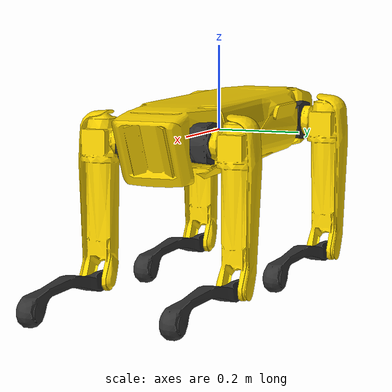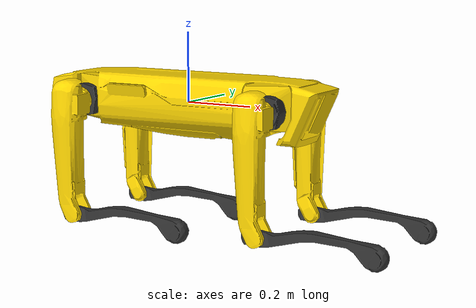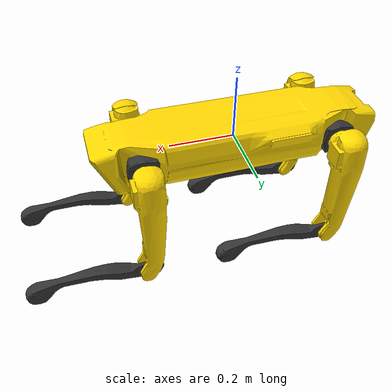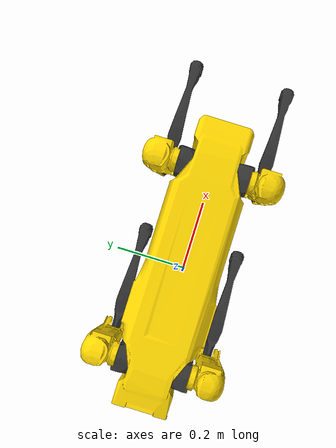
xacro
<?xml version="1.0" ?>
<robot name="spot" xmlns:xacro="http://www.ros.org/wiki/xacro">
  <link name="body">
    <visual>
      <origin xyz="0 0 0" rpy="0 0 0"/>
      <geometry>
        <mesh filename="package://spot_description/meshes/base_simple/visual/body.obj"/>
      </geometry>
      <material name="body"> <color rgba="1 0.8431 0 1"/></material>
    </visual>
    <collision>
      <geometry>
        <mesh filename="package://spot_description/meshes/base_simple/collision/body.stl" />
      </geometry>
    </collision>
  </link>

  <link name="body_inertia">
    <inertial>
      <origin rpy="0.0 0.0 0.0" xyz="0.006394396536052227 -9.812158532440662e-05 0.0009113792330026627"/>
      <mass value="32.86"/>
      <inertia ixx="0.13143999874591827" ixy="0.0" ixz="0.0" iyy="0.13143999874591827" iyz="0.0" izz="0.13143999874591827"/>
    </inertial>
  </link>
  <joint name="body_inertia_joint" type="fixed">
    <origin xyz="0 0 0" rpy="0 0 0" />
    <parent link="body" />
    <child link="body_inertia" />
  </joint>

  <link name="fl_hip">
    <visual>
      <origin xyz="0 0 0" rpy="0 0 0"/>
      <geometry>
        <mesh filename="package://spot_description/meshes/base_simple/visual/fl_hip.obj"/>
      </geometry>
      <material name="fl_hip"> <color rgba="0.2 0.2 0.2 1"/></material>
    </visual>
    <collision>
      <geometry>
        <mesh filename="package://spot_description/meshes/base_simple/collision/fl_hip.stl" />
      </geometry>
    </collision>
    <inertial>
      <origin rpy="-0.716521349312305 0.02956473059648479 0.03655230014702582" xyz="-0.005374345928430557 0.012841847725212574 9.875232353806496e-05"/>
      <mass value="1.68"/>
      <inertia ixx="0.0021147398873455382" ixy="0.0" ixz="0.0" iyy="0.0018129577956607131" iyz="0.0" izz="0.002265435737304666"/>
    </inertial>
  </link>
  <joint name="fl_hx" type="revolute">
    <origin xyz="0.29785 0.05500 0.00000" rpy="0 0 0"/>
    <axis xyz="1 0 0"/>
    <parent link="body"/>
    <child link="fl_hip"/>
    <limit effort="1000" velocity="1000.00" lower="-0.78539816339744827899" upper="0.78539816339744827899"/>
  </joint>

  <link name="fl_uleg">
    <visual>
      <origin xyz="0 0 0" rpy="0 0 0"/>
      <geometry>
        <mesh filename="package://spot_description/meshes/base_simple/visual/fl_uleg.obj"/>
      </geometry>
      <material name="fl_uleg"> <color rgba="1 0.8431 0 1"/></material>
    </visual>
    <collision>
      <geometry>
        <mesh filename="package://spot_description/meshes/base_simple/collision/fl_uleg.stl" />
      </geometry>
    </collision>
    <inertial>
      <origin rpy="-0.26437828203369795 -0.04853174570753804 0.024046963096353124" xyz="0.005142373498529196 -0.0024323679972440004 -0.12100915610790253"/>
      <mass value="2.34"/>
      <inertia ixx="0.02755964961185679" ixy="0.0" ixz="0.0" iyy="0.027354914287651046" iyz="0.0" izz="0.002848145546743553"/>
    </inertial>
  </link>
  <joint name="fl_hy" type="revolute">
    <origin xyz="0.0 0.11080 0.0" rpy="0 0 0"/>
    <axis xyz="0 1      0"/>
    <parent link="fl_hip"/>
    <child link="fl_uleg"/>
    <limit effort="1000" velocity="1000.00" lower="-0.89884456477707963539" upper="2.2951079663725435509"/>
  </joint>

  <link name="fl_lleg">
    <visual>
      <origin xyz="0 0 0" rpy="0 0 0"/>
      <geometry>
        <mesh filename="package://spot_description/meshes/base_simple/visual/fl_lleg.obj"/>
      </geometry>
      <material name="fl_lleg"> <color rgba="0.2 0.2 0.2 1"/></material>
    </visual>
    <collision>
      <geometry>
        <mesh filename="package://spot_description/meshes/base_simple/collision/fl_lleg.stl" />
      </geometry>
    </collision>
    <inertial>
      <origin rpy="-0.007266925694167092 -0.009591807116834161 0.00035255970529224356" xyz="0.00225794012658298 4.607596201822162e-05 -0.1800822913646698"/>
      <mass value="0.35"/>
      <inertia ixx="0.003999022654901177" ixy="0.0" ixz="0.0" iyy="0.0040503157598010785" iyz="0.0" izz="0.0001493402097647426"/>
    </inertial>
  </link>
  <joint name="fl_kn" type="revolute">
    <origin xyz="0.025 0.000 -0.3200" rpy="0 0 0"/>
    <axis xyz="0 1 0"/>
    <parent link="fl_uleg"/>
    <child link="fl_lleg"/>
    <limit effort="1000" velocity="1000.00" lower="-2.7929" upper="-0.254402"/>
  </joint>

  <link name="fr_hip">
    <visual>
      <origin xyz="0 0 0" rpy="0 0 0"/>
      <geometry>
        <mesh filename="package://spot_description/meshes/base_simple/visual/fr_hip.obj"/>
      </geometry>
      <material name="fr_hip"> <color rgba="0.2 0.2 0.2 1"/></material>
    </visual>
    <collision>
      <geometry>
        <mesh filename="package://spot_description/meshes/base_simple/collision/fr_hip.stl" />
      </geometry>
    </collision>
    <inertial>
      <origin rpy="0.7165213493123055 -0.02956473059648479 0.03655230014702582" xyz="-0.005374345928430557 -0.012841847725212574 -9.875232353806496e-05"/>
      <mass value="1.68"/>
      <inertia ixx="0.0021147398873455382" ixy="0.0" ixz="0.0" iyy="0.0018129577956607131" iyz="0.0" izz="0.002265435737304666"/>
    </inertial>
  </link>
  <joint name="fr_hx" type="revolute">
    <origin xyz="0.29785 -0.05500 0.00000" rpy="0 0 0"/>
    <axis xyz="1 0 0"/>
    <parent link="body"/>
    <child link="fr_hip"/>
    <limit effort="1000" velocity="1000.00" lower="-0.78539816339744827899" upper="0.78539816339744827899"/>
  </joint>

  <link name="fr_uleg">
    <visual>
      <origin xyz="0 0 0" rpy="0 0 0"/>
      <geometry>
        <mesh filename="package://spot_description/meshes/base_simple/visual/fr_uleg.obj"/>
      </geometry>
      <material name="fr_uleg"> <color rgba="1 0.8431 0 1"/></material>
    </visual>
    <collision>
      <geometry>
        <mesh filename="package://spot_description/meshes/base_simple/collision/fr_uleg.stl" />
      </geometry>
    </collision>
    <inertial>
      <origin rpy="0.2643905306958363 -0.04853174688302708 -0.024046943559834943" xyz="0.005142373498529196 0.0024323677644133568 -0.12100915610790253"/>
      <mass value="2.34"/>
      <inertia ixx="0.02755964678927691" ixy="0.0" ixz="0.0" iyy="0.02735491706466737" iyz="0.0" izz="0.0028481453594764797"/>
    </inertial>
  </link>
  <joint name="fr_hy" type="revolute">
    <origin xyz="0.0 -0.11080 0.0" rpy="0 0 0"/>
    <axis xyz="0  1      0"/>
    <parent link="fr_hip"/>
    <child link="fr_uleg"/>
    <limit effort="1000" velocity="1000.00" lower="-0.898845" upper="2.24363"/>
  </joint>

  <link name="fr_lleg">
    <visual>
      <origin xyz="0 0 0" rpy="0 0 0"/>
      <geometry>
        <mesh filename="package://spot_description/meshes/base_simple/visual/fr_lleg.obj"/>
      </geometry>
      <material name="fr_lleg"> <color rgba="0.2 0.2 0.2 1"/></material>
    </visual>
    <collision>
      <geometry>
        <mesh filename="package://spot_description/meshes/base_simple/collision/fr_lleg.stl" />
      </geometry>
    </collision>
    <inertial>
      <origin rpy="-0.007266925694167092 -0.009591807116834161 0.00035255970529224356" xyz="0.00225794012658298 4.607596201822162e-05 -0.1800822913646698"/>
      <mass value="0.35"/>
      <inertia ixx="0.003999022654901177" ixy="0.0" ixz="0.0" iyy="0.0040503157598010785" iyz="0.0" izz="0.0001493402097647426"/>
    </inertial>
  </link>
  <joint name="fr_kn" type="revolute">
    <origin xyz="0.025 0.000 -0.3200" rpy="0 0 0"/>
    <axis xyz="0 1 0"/>
    <parent link="fr_uleg"/>
    <child link="fr_lleg"/>
    <limit effort="1000" velocity="1000.00" lower="-2.7929" upper="-0.255648"/>
  </joint>

  <link name="hl_hip">
    <visual>
      <origin xyz="0 0 0" rpy="0 0 0"/>
      <geometry>
        <mesh filename="package://spot_description/meshes/base_simple/visual/hl_hip.obj"/>
      </geometry>
      <material name="hl_hip"> <color rgba="0.2 0.2 0.2 1"/></material>
    </visual>
    <collision>
      <geometry>
        <mesh filename="package://spot_description/meshes/base_simple/collision/hl_hip.stl" />
      </geometry>
    </collision>
    <inertial>
      <origin rpy="0.7165213493123055 0.02956473059648479 -0.03655230014702582" xyz="0.005374345928430557 0.012841847725212574 -9.875232353806496e-05"/>
      <mass value="1.68"/>
      <inertia ixx="0.0021147398873455382" ixy="0.0" ixz="0.0" iyy="0.0018129577956607131" iyz="0.0" izz="0.002265435737304666"/>
    </inertial>
  </link>
  <joint name="hl_hx" type="revolute">
    <origin xyz="-0.29785 0.05500 0.00000" rpy="0 0 0"/>
    <axis xyz="1 0 0"/>
    <parent link="body"/>
    <child link="hl_hip"/>
    <limit effort="1000" velocity="1000.00" lower="-0.78539816339744827899" upper="0.78539816339744827899"/>
  </joint>

  <link name="hl_uleg">
    <visual>
      <origin xyz="0 0 0" rpy="0 0 0"/>
      <geometry>
        <mesh filename="package://spot_description/meshes/base_simple/visual/hl_uleg.obj"/>
      </geometry>
      <material name="hl_uleg"> <color rgba="1 0.8431 0 1"/></material>
    </visual>
    <collision>
      <geometry>
        <mesh filename="package://spot_description/meshes/base_simple/collision/hl_uleg.stl" />
      </geometry>
    </collision>
    <inertial>
      <origin rpy="-0.26437828203369795 -0.04853174570753804 0.024046963096353124" xyz="0.005142373498529196 -0.0024323679972440004 -0.12100915610790253"/>
      <mass value="2.34"/>
      <inertia ixx="0.02755964961185679" ixy="0.0" ixz="0.0" iyy="0.027354914287651046" iyz="0.0" izz="0.002848145546743553"/>
    </inertial>
  </link>
  <joint name="hl_hy" type="revolute">
    <origin xyz="0.0 0.11080 0.0" rpy="0 0 0"/>
    <axis xyz="0 1      0"/>
    <parent link="hl_hip"/>
    <child link="hl_uleg"/>
    <limit effort="1000" velocity="1000.00" lower="-0.89884456477707963539" upper="2.2951079663725435509"/>
  </joint>

  <link name="hl_lleg">
    <visual>
      <origin xyz="0 0 0" rpy="0 0 0"/>
      <geometry>
        <mesh filename="package://spot_description/meshes/base_simple/visual/hl_lleg.obj"/>
      </geometry>
      <material name="hl_lleg"> <color rgba="0.2 0.2 0.2 1"/></material>
    </visual>
    <collision>
      <geometry>
        <mesh filename="package://spot_description/meshes/base_simple/collision/hl_lleg.stl" />
      </geometry>
    </collision>
    <inertial>
      <origin rpy="-0.007266925694167092 -0.009591807116834161 0.00035255970529224356" xyz="0.00225794012658298 4.607596201822162e-05 -0.1800822913646698"/>
      <mass value="0.35"/>
      <inertia ixx="0.003999022654901177" ixy="0.0" ixz="0.0" iyy="0.0040503157598010785" iyz="0.0" izz="0.0001493402097647426"/>
    </inertial>
  </link>
  <joint name="hl_kn" type="revolute">
    <origin xyz="0.025 0.000 -0.3200" rpy="0 0 0"/>
    <axis xyz="0 1 0"/>
    <parent link="hl_uleg"/>
    <child link="hl_lleg"/>
    <limit effort="1000" velocity="1000.00" lower="-2.7929" upper="-0.247067"/>
  </joint>

  <link name="hr_hip">
    <visual>
      <origin xyz="0 0 0" rpy="0 0 0"/>
      <geometry>
        <mesh filename="package://spot_description/meshes/base_simple/visual/hr_hip.obj"/>
      </geometry>
      <material name="hr_hip"> <color rgba="0.2 0.2 0.2 1"/></material>
    </visual>
    <collision>
      <geometry>
        <mesh filename="package://spot_description/meshes/base_simple/collision/hr_hip.stl" />
      </geometry>
    </collision>
    <inertial>
      <origin rpy="-0.716521349312305 -0.02956473059648479 -0.03655230014702582" xyz="0.005374345928430557 -0.012841847725212574 9.875232353806496e-05"/>
      <mass value="1.68"/>
      <inertia ixx="0.0021147398873455382" ixy="0.0" ixz="0.0" iyy="0.0018129577956607131" iyz="0.0" izz="0.002265435737304666"/>
    </inertial>

  </link>
  <joint name="hr_hx" type="revolute">
    <origin xyz="-0.29785 -0.05500 0.00000" rpy="0 0 0"/>
    <axis xyz="1 0 0"/>
    <parent link="body"/>
    <child link="hr_hip"/>
    <limit effort="1000" velocity="1000.00" lower="-0.78539816339744827899" upper="0.78539816339744827899"/>
  </joint>

  <link name="hr_uleg">
    <visual>
      <origin xyz="0 0 0" rpy="0 0 0"/>
      <geometry>
        <mesh filename="package://spot_description/meshes/base_simple/visual/hr_uleg.obj"/>
      </geometry>
      <material name="hr_uleg"> <color rgba="1 0.8431 0 1"/></material>
    </visual>
    <collision>
      <geometry>
        <mesh filename="package://spot_description/meshes/base_simple/collision/hr_uleg.stl" />
      </geometry>
    </collision>
    <inertial>
      <origin rpy="0.2643905306958363 -0.04853174688302708 -0.024046943559834943" xyz="0.005142373498529196 0.0024323677644133568 -0.12100915610790253"/>
      <mass value="2.34"/>
      <inertia ixx="0.02755964678927691" ixy="0.0" ixz="0.0" iyy="0.02735491706466737" iyz="0.0" izz="0.0028481453594764797"/>
    </inertial>
  </link>
  <joint name="hr_hy" type="revolute">
    <origin xyz="0.0 -0.11080 0.0" rpy="0 0 0"/>
    <axis xyz="0  1      0"/>
    <parent link="hr_hip"/>
    <child link="hr_uleg"/>
    <limit effort="1000" velocity="1000.00" lower="-0.89884456477707963539" upper="2.2951079663725435509"/>
  </joint>

  <link name="hr_lleg">
    <visual>
      <origin xyz="0 0 0" rpy="0 0 0"/>
      <geometry>
        <mesh filename="package://spot_description/meshes/base_simple/visual/hr_lleg.obj"/>
      </geometry>
      <material name="hr_lleg"> <color rgba="0.2 0.2 0.2 1"/></material>
    </visual>
    <collision>
      <geometry>
        <mesh filename="package://spot_description/meshes/base_simple/collision/hr_lleg.stl" />
      </geometry>
    </collision>
    <inertial>
      <origin rpy="-0.007266925694167092 -0.009591807116834161 0.00035255970529224356" xyz="0.00225794012658298 4.607596201822162e-05 -0.1800822913646698"/>
      <mass value="0.35"/>
      <inertia ixx="0.003999022654901177" ixy="0.0" ixz="0.0" iyy="0.0040503157598010785" iyz="0.0" izz="0.0001493402097647426"/>
    </inertial>
  </link>
  <joint name="hr_kn" type="revolute">
    <origin xyz="0.025 0.000 -0.3200" rpy="0 0 0"/>
    <axis xyz="0 1 0"/>
    <parent link="hr_uleg"/>
    <child link="hr_lleg"/>
    <limit effort="1000" velocity="1000.00" lower="-2.7929" upper="-0.248282"/>
  </joint>

  <!-- Standard accessories. -->

  <!-- Optional custom includes. -->
</robot>
